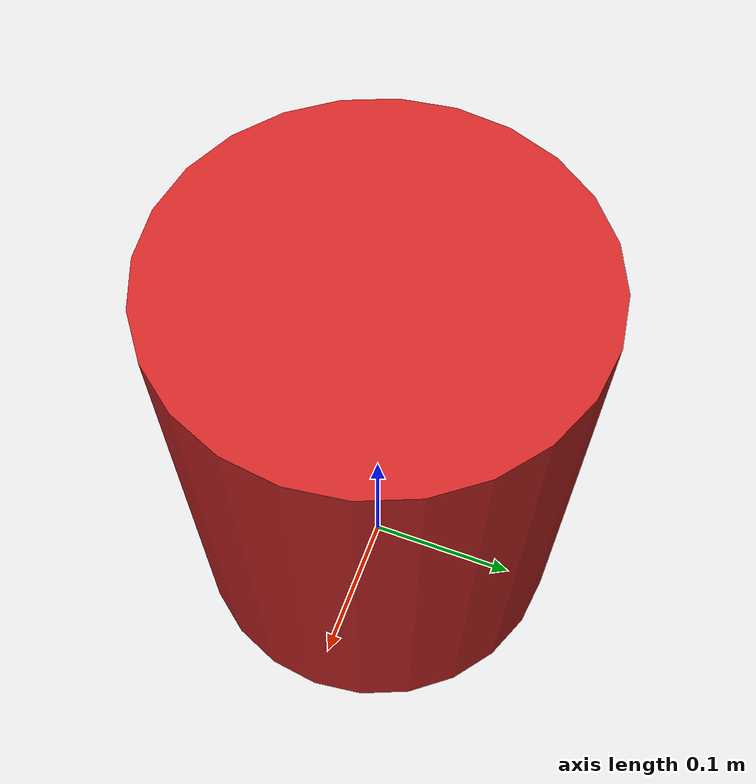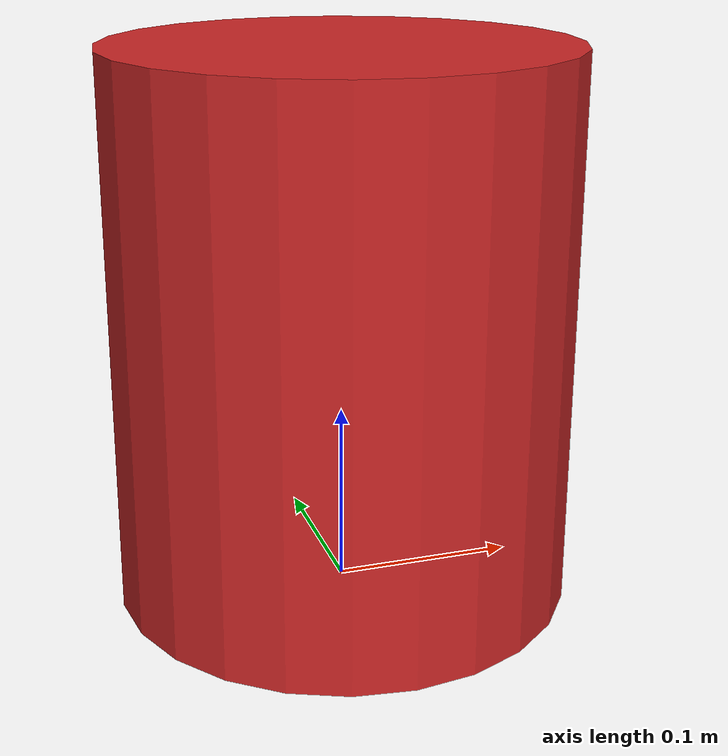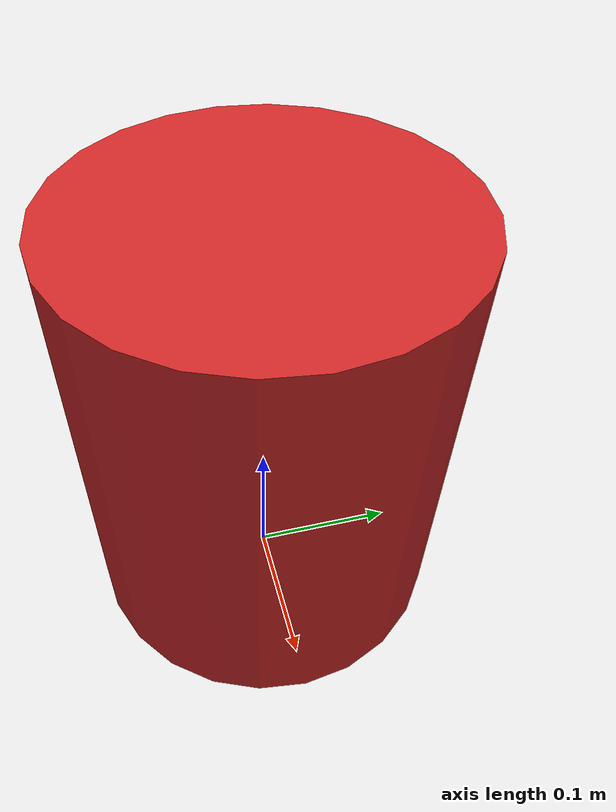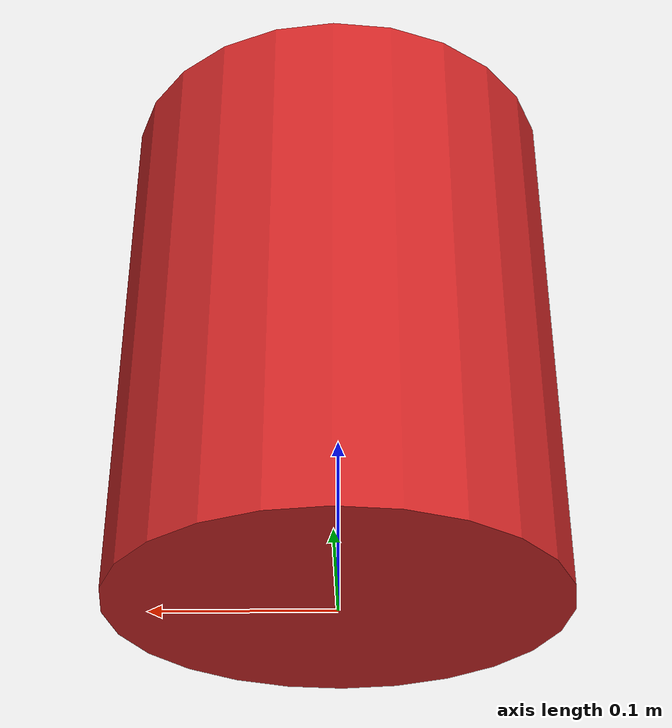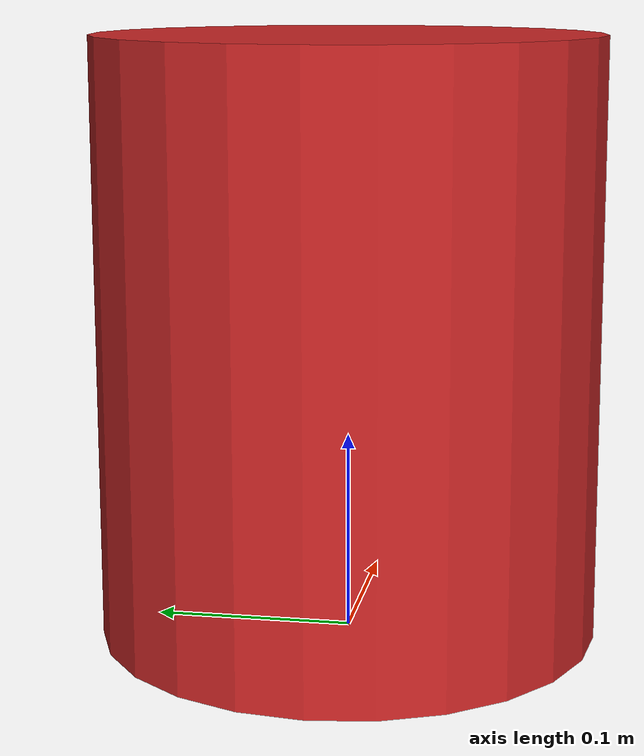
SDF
<?xml version='1.0'?>
<sdf version='1.5'>
  <model name='cylinder'>
    <link name='link'>
      <pose frame=''>0 0 0.15 0 -0 0</pose>
      <inertial>
        <mass>1</mass>
        <inertia>
          <ixx>0.145833</ixx>
          <ixy>0</ixy>
          <ixz>0</ixz>
          <iyy>0.145833</iyy>
          <iyz>0</iyz>
          <izz>0.125</izz>
        </inertia>
        <pose frame=''>0 0 0 0 -0 0</pose>
      </inertial>
      <self_collide>0</self_collide>
      <kinematic>0</kinematic>
      <gravity>1</gravity>
      <visual name='visual'>
        <geometry>
          <cylinder>
            <radius>0.125</radius>
            <length>0.3</length>
          </cylinder>
        </geometry>
        <material>
          <script>
            <name>Gazebo/Red</name>
            <uri>file://media/materials/scripts/gazebo.material</uri>
          </script>
          <ambient>1 0 0 1</ambient>
          <diffuse>1 0 0 1</diffuse>
          <specular>0.01 0 0 1</specular>
          <emissive>0 0 0 1</emissive>
          <shader type='vertex'>
            <normal_map>__default__</normal_map>
          </shader>
        </material>
        <pose frame=''>0 0 0 0 -0 0</pose>
        <cast_shadows>1</cast_shadows>
        <transparency>0.0</transparency>
      </visual>
    </link>
    <static>1</static>
    <allow_auto_disable>1</allow_auto_disable>
  </model>
</sdf>
